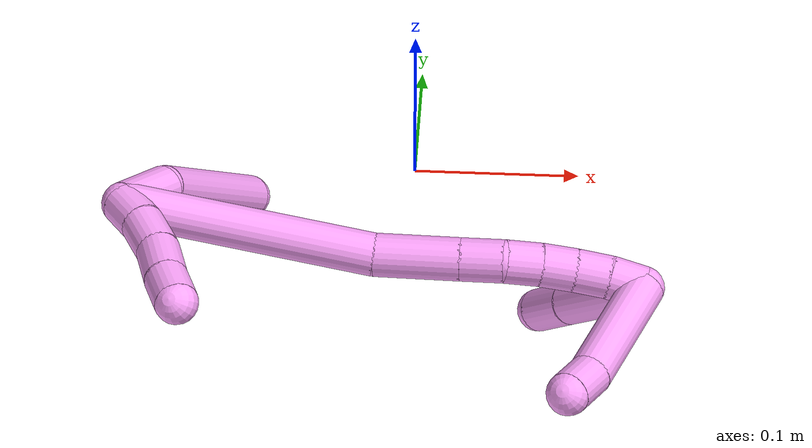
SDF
<sdf version="1.7">
 <world name="default">
  <model name="4">
   <static>0</static>
   <link name="4">
    <collision name="collision-cylinder-e_1_2_8">
     <pose>0.007513 0.005716 -0.017324 -2.82287 0.390689 -1.77722</pose>
     <geometry><cylinder><radius>0.0125</radius><length>0.039458</length></cylinder></geometry>
     <surface>
      <friction><ode><mu>1.16</mu><mu2>1.16</mu2><slip1>0</slip1><slip2>0</slip2></ode></friction>
      <contact><ode><kp>1e+06</kp><kd>1</kd><max_vel>0</max_vel><min_depth>0.001</min_depth></ode></contact>
     </surface>
    </collision>
    <visual name="visual-cylinder-e_1_2_8">
     <pose>0.007513 0.005716 -0.017324 -2.82287 0.390689 -1.77722</pose>
     <geometry><cylinder><radius>0.0125</radius><length>0.039458</length></cylinder></geometry>
     <material><ambient>1 0.65098 0.996078 1</ambient></material>
    </visual>
    <collision name="collision-cylinder-e_2_8_6">
     <pose>0.0232 0.015312 -0.089173 -3.07057 0.14843 -2.25012</pose>
     <geometry><cylinder><radius>0.0125</radius><length>0.110542</length></cylinder></geometry>
     <surface>
      <friction><ode><mu>1.16</mu><mu2>1.16</mu2><slip1>0</slip1><slip2>0</slip2></ode></friction>
      <contact><ode><kp>1e+06</kp><kd>1</kd><max_vel>0</max_vel><min_depth>0.001</min_depth></ode></contact>
     </surface>
    </collision>
    <visual name="visual-cylinder-e_2_8_6">
     <pose>0.0232 0.015312 -0.089173 -3.07057 0.14843 -2.25012</pose>
     <geometry><cylinder><radius>0.0125</radius><length>0.110542</length></cylinder></geometry>
     <material><ambient>1 0.65098 0.996078 1</ambient></material>
    </visual>
    <collision name="collision-cylinder-e_1_2_9">
     <pose>0.005871 -0.008615 0.005178 1.02959 0.52862 0.30383</pose>
     <geometry><cylinder><radius>0.0125</radius><length>0.023281</length></cylinder></geometry>
     <surface>
      <friction><ode><mu>1.16</mu><mu2>1.16</mu2><slip1>0</slip1><slip2>0</slip2></ode></friction>
      <contact><ode><kp>1e+06</kp><kd>1</kd><max_vel>0</max_vel><min_depth>0.001</min_depth></ode></contact>
     </surface>
    </collision>
    <visual name="visual-cylinder-e_1_2_9">
     <pose>0.005871 -0.008615 0.005178 1.02959 0.52862 0.30383</pose>
     <geometry><cylinder><radius>0.0125</radius><length>0.023281</length></cylinder></geometry>
     <material><ambient>1 0.65098 0.996078 1</ambient></material>
    </visual>
    <collision name="collision-cylinder-e_2_9_10">
     <pose>0.016521 -0.027587 0.016791 1.01487 0.373613 0.209409</pose>
     <geometry><cylinder><radius>0.0125</radius><length>0.026191</length></cylinder></geometry>
     <surface>
      <friction><ode><mu>1.16</mu><mu2>1.16</mu2><slip1>0</slip1><slip2>0</slip2></ode></friction>
      <contact><ode><kp>1e+06</kp><kd>1</kd><max_vel>0</max_vel><min_depth>0.001</min_depth></ode></contact>
     </surface>
    </collision>
    <visual name="visual-cylinder-e_2_9_10">
     <pose>0.016521 -0.027587 0.016791 1.01487 0.373613 0.209409</pose>
     <geometry><cylinder><radius>0.0125</radius><length>0.026191</length></cylinder></geometry>
     <material><ambient>1 0.65098 0.996078 1</ambient></material>
    </visual>
    <collision name="collision-cylinder-e_3_10_11">
     <pose>0.024389 -0.048251 0.031486 0.895225 0.229613 0.110614</pose>
     <geometry><cylinder><radius>0.0125</radius><length>0.027132</length></cylinder></geometry>
     <surface>
      <friction><ode><mu>1.16</mu><mu2>1.16</mu2><slip1>0</slip1><slip2>0</slip2></ode></friction>
      <contact><ode><kp>1e+06</kp><kd>1</kd><max_vel>0</max_vel><min_depth>0.001</min_depth></ode></contact>
     </surface>
    </collision>
    <visual name="visual-cylinder-e_3_10_11">
     <pose>0.024389 -0.048251 0.031486 0.895225 0.229613 0.110614</pose>
     <geometry><cylinder><radius>0.0125</radius><length>0.027132</length></cylinder></geometry>
     <material><ambient>1 0.65098 0.996078 1</ambient></material>
    </visual>
    <collision name="collision-cylinder-e_4_11_5">
     <pose>0.030937 -0.067492 0.046461 0.926196 0.300371 0.15083</pose>
     <geometry><cylinder><radius>0.0125</radius><length>0.023395</length></cylinder></geometry>
     <surface>
      <friction><ode><mu>1.16</mu><mu2>1.16</mu2><slip1>0</slip1><slip2>0</slip2></ode></friction>
      <contact><ode><kp>1e+06</kp><kd>1</kd><max_vel>0</max_vel><min_depth>0.001</min_depth></ode></contact>
     </surface>
    </collision>
    <visual name="visual-cylinder-e_4_11_5">
     <pose>0.030937 -0.067492 0.046461 0.926196 0.300371 0.15083</pose>
     <geometry><cylinder><radius>0.0125</radius><length>0.023395</length></cylinder></geometry>
     <material><ambient>1 0.65098 0.996078 1</ambient></material>
    </visual>
    <collision name="collision-cylinder-e_1_2_12">
     <pose>0.061952 -0.030002 -0.023056 2.22601 1.0225 1.70026</pose>
     <geometry><cylinder><radius>0.0125</radius><length>0.145187</length></cylinder></geometry>
     <surface>
      <friction><ode><mu>1.16</mu><mu2>1.16</mu2><slip1>0</slip1><slip2>0</slip2></ode></friction>
      <contact><ode><kp>1e+06</kp><kd>1</kd><max_vel>0</max_vel><min_depth>0.001</min_depth></ode></contact>
     </surface>
    </collision>
    <visual name="visual-cylinder-e_1_2_12">
     <pose>0.061952 -0.030002 -0.023056 2.22601 1.0225 1.70026</pose>
     <geometry><cylinder><radius>0.0125</radius><length>0.145187</length></cylinder></geometry>
     <material><ambient>1 0.65098 0.996078 1</ambient></material>
    </visual>
    <collision name="collision-cylinder-e_2_12_13">
     <pose>0.146801 -0.067352 -0.051296 2.1853 1.19655 1.84142</pose>
     <geometry><cylinder><radius>0.0125</radius><length>0.049197</length></cylinder></geometry>
     <surface>
      <friction><ode><mu>1.16</mu><mu2>1.16</mu2><slip1>0</slip1><slip2>0</slip2></ode></friction>
      <contact><ode><kp>1e+06</kp><kd>1</kd><max_vel>0</max_vel><min_depth>0.001</min_depth></ode></contact>
     </surface>
    </collision>
    <visual name="visual-cylinder-e_2_12_13">
     <pose>0.146801 -0.067352 -0.051296 2.1853 1.19655 1.84142</pose>
     <geometry><cylinder><radius>0.0125</radius><length>0.049197</length></cylinder></geometry>
     <material><ambient>1 0.65098 0.996078 1</ambient></material>
    </visual>
    <collision name="collision-cylinder-e_3_13_14">
     <pose>0.181266 -0.078332 -0.059016 2.18021 1.20516 1.84432</pose>
     <geometry><cylinder><radius>0.0125</radius><length>0.024778</length></cylinder></geometry>
     <surface>
      <friction><ode><mu>1.16</mu><mu2>1.16</mu2><slip1>0</slip1><slip2>0</slip2></ode></friction>
      <contact><ode><kp>1e+06</kp><kd>1</kd><max_vel>0</max_vel><min_depth>0.001</min_depth></ode></contact>
     </surface>
    </collision>
    <visual name="visual-cylinder-e_3_13_14">
     <pose>0.181266 -0.078332 -0.059016 2.18021 1.20516 1.84432</pose>
     <geometry><cylinder><radius>0.0125</radius><length>0.024778</length></cylinder></geometry>
     <material><ambient>1 0.65098 0.996078 1</ambient></material>
    </visual>
    <collision name="collision-cylinder-e_4_14_15">
     <pose>0.201593 -0.084829 -0.066245 2.5934 1.01006 2.20061</pose>
     <geometry><cylinder><radius>0.0125</radius><length>0.020681</length></cylinder></geometry>
     <surface>
      <friction><ode><mu>1.16</mu><mu2>1.16</mu2><slip1>0</slip1><slip2>0</slip2></ode></friction>
      <contact><ode><kp>1e+06</kp><kd>1</kd><max_vel>0</max_vel><min_depth>0.001</min_depth></ode></contact>
     </surface>
    </collision>
    <visual name="visual-cylinder-e_4_14_15">
     <pose>0.201593 -0.084829 -0.066245 2.5934 1.01006 2.20061</pose>
     <geometry><cylinder><radius>0.0125</radius><length>0.020681</length></cylinder></geometry>
     <material><ambient>1 0.65098 0.996078 1</ambient></material>
    </visual>
    <collision name="collision-cylinder-e_5_15_16">
     <pose>0.218694 -0.091141 -0.075324 2.47567 0.981618 1.9929</pose>
     <geometry><cylinder><radius>0.0125</radius><length>0.020073</length></cylinder></geometry>
     <surface>
      <friction><ode><mu>1.16</mu><mu2>1.16</mu2><slip1>0</slip1><slip2>0</slip2></ode></friction>
      <contact><ode><kp>1e+06</kp><kd>1</kd><max_vel>0</max_vel><min_depth>0.001</min_depth></ode></contact>
     </surface>
    </collision>
    <visual name="visual-cylinder-e_5_15_16">
     <pose>0.218694 -0.091141 -0.075324 2.47567 0.981618 1.9929</pose>
     <geometry><cylinder><radius>0.0125</radius><length>0.020073</length></cylinder></geometry>
     <material><ambient>1 0.65098 0.996078 1</ambient></material>
    </visual>
    <collision name="collision-cylinder-e_6_16_17">
     <pose>0.235503 -0.098616 -0.083265 2.29384 1.0051 1.76678</pose>
     <geometry><cylinder><radius>0.0125</radius><length>0.020053</length></cylinder></geometry>
     <surface>
      <friction><ode><mu>1.16</mu><mu2>1.16</mu2><slip1>0</slip1><slip2>0</slip2></ode></friction>
      <contact><ode><kp>1e+06</kp><kd>1</kd><max_vel>0</max_vel><min_depth>0.001</min_depth></ode></contact>
     </surface>
    </collision>
    <visual name="visual-cylinder-e_6_16_17">
     <pose>0.235503 -0.098616 -0.083265 2.29384 1.0051 1.76678</pose>
     <geometry><cylinder><radius>0.0125</radius><length>0.020053</length></cylinder></geometry>
     <material><ambient>1 0.65098 0.996078 1</ambient></material>
    </visual>
    <collision name="collision-cylinder-e_7_17_1">
     <pose>0.251905 -0.107614 -0.090375 2.19166 0.91488 1.52716</pose>
     <geometry><cylinder><radius>0.0125</radius><length>0.020032</length></cylinder></geometry>
     <surface>
      <friction><ode><mu>1.16</mu><mu2>1.16</mu2><slip1>0</slip1><slip2>0</slip2></ode></friction>
      <contact><ode><kp>1e+06</kp><kd>1</kd><max_vel>0</max_vel><min_depth>0.001</min_depth></ode></contact>
     </surface>
    </collision>
    <visual name="visual-cylinder-e_7_17_1">
     <pose>0.251905 -0.107614 -0.090375 2.19166 0.91488 1.52716</pose>
     <geometry><cylinder><radius>0.0125</radius><length>0.020032</length></cylinder></geometry>
     <material><ambient>1 0.65098 0.996078 1</ambient></material>
    </visual>
    <collision name="collision-cylinder-e_1_1_18">
     <pose>0.244038 -0.136804 -0.069992 0.791316 -0.434531 -0.183887</pose>
     <geometry><cylinder><radius>0.0125</radius><length>0.075086</length></cylinder></geometry>
     <surface>
      <friction><ode><mu>1.16</mu><mu2>1.16</mu2><slip1>0</slip1><slip2>0</slip2></ode></friction>
      <contact><ode><kp>1e+06</kp><kd>1</kd><max_vel>0</max_vel><min_depth>0.001</min_depth></ode></contact>
     </surface>
    </collision>
    <visual name="visual-cylinder-e_1_1_18">
     <pose>0.244038 -0.136804 -0.069992 0.791316 -0.434531 -0.183887</pose>
     <geometry><cylinder><radius>0.0125</radius><length>0.075086</length></cylinder></geometry>
     <material><ambient>1 0.65098 0.996078 1</ambient></material>
    </visual>
    <collision name="collision-cylinder-e_2_18_4">
     <pose>0.223324 -0.166382 -0.035936 0.486815 -0.405009 -0.101886</pose>
     <geometry><cylinder><radius>0.0125</radius><length>0.024914</length></cylinder></geometry>
     <surface>
      <friction><ode><mu>1.16</mu><mu2>1.16</mu2><slip1>0</slip1><slip2>0</slip2></ode></friction>
      <contact><ode><kp>1e+06</kp><kd>1</kd><max_vel>0</max_vel><min_depth>0.001</min_depth></ode></contact>
     </surface>
    </collision>
    <visual name="visual-cylinder-e_2_18_4">
     <pose>0.223324 -0.166382 -0.035936 0.486815 -0.405009 -0.101886</pose>
     <geometry><cylinder><radius>0.0125</radius><length>0.024914</length></cylinder></geometry>
     <material><ambient>1 0.65098 0.996078 1</ambient></material>
    </visual>
    <collision name="collision-cylinder-e_1_1_19">
     <pose>0.233571 -0.106577 -0.114544 -2.85814 -0.885587 2.55705</pose>
     <geometry><cylinder><radius>0.0125</radius><length>0.067861</length></cylinder></geometry>
     <surface>
      <friction><ode><mu>1.16</mu><mu2>1.16</mu2><slip1>0</slip1><slip2>0</slip2></ode></friction>
      <contact><ode><kp>1e+06</kp><kd>1</kd><max_vel>0</max_vel><min_depth>0.001</min_depth></ode></contact>
     </surface>
    </collision>
    <visual name="visual-cylinder-e_1_1_19">
     <pose>0.233571 -0.106577 -0.114544 -2.85814 -0.885587 2.55705</pose>
     <geometry><cylinder><radius>0.0125</radius><length>0.067861</length></cylinder></geometry>
     <material><ambient>1 0.65098 0.996078 1</ambient></material>
    </visual>
    <collision name="collision-cylinder-e_2_19_3">
     <pose>0.195487 -0.097749 -0.145682 -2.87946 -0.825787 2.557</pose>
     <geometry><cylinder><radius>0.0125</radius><length>0.032139</length></cylinder></geometry>
     <surface>
      <friction><ode><mu>1.16</mu><mu2>1.16</mu2><slip1>0</slip1><slip2>0</slip2></ode></friction>
      <contact><ode><kp>1e+06</kp><kd>1</kd><max_vel>0</max_vel><min_depth>0.001</min_depth></ode></contact>
     </surface>
    </collision>
    <visual name="visual-cylinder-e_2_19_3">
     <pose>0.195487 -0.097749 -0.145682 -2.87946 -0.825787 2.557</pose>
     <geometry><cylinder><radius>0.0125</radius><length>0.032139</length></cylinder></geometry>
     <material><ambient>1 0.65098 0.996078 1</ambient></material>
    </visual>
    <collision name="collision-sphere-3">
     <pose>0.183674 -0.094926 -0.156205 0 -0 0</pose>
     <geometry><sphere><radius>0.0125</radius></sphere></geometry>
     <surface>
      <friction><ode><mu>1.16</mu><mu2>1.16</mu2><slip1>0</slip1><slip2>0</slip2></ode></friction>
      <contact><ode><kp>1e+06</kp><kd>1</kd><max_vel>0</max_vel><min_depth>0.001</min_depth></ode></contact>
     </surface>
    </collision>
    <visual name="visual-sphere-3">
     <pose>0.183674 -0.094926 -0.156205 0 -0 0</pose>
     <geometry><sphere><radius>0.0125</radius></sphere></geometry>
     <material><ambient>1 0.65098 0.996078 1</ambient></material>
    </visual>
    <collision name="collision-sphere-19">
     <pose>0.207299 -0.100572 -0.13516 0 -0 0</pose>
     <geometry><sphere><radius>0.0125</radius></sphere></geometry>
     <surface>
      <friction><ode><mu>1.16</mu><mu2>1.16</mu2><slip1>0</slip1><slip2>0</slip2></ode></friction>
      <contact><ode><kp>1e+06</kp><kd>1</kd><max_vel>0</max_vel><min_depth>0.001</min_depth></ode></contact>
     </surface>
    </collision>
    <visual name="visual-sphere-19">
     <pose>0.207299 -0.100572 -0.13516 0 -0 0</pose>
     <geometry><sphere><radius>0.0125</radius></sphere></geometry>
     <material><ambient>1 0.65098 0.996078 1</ambient></material>
    </visual>
    <collision name="collision-sphere-11">
     <pose>0.027476 -0.05856 0.039747 0 -0 0</pose>
     <geometry><sphere><radius>0.0125</radius></sphere></geometry>
     <surface>
      <friction><ode><mu>1.16</mu><mu2>1.16</mu2><slip1>0</slip1><slip2>0</slip2></ode></friction>
      <contact><ode><kp>1e+06</kp><kd>1</kd><max_vel>0</max_vel><min_depth>0.001</min_depth></ode></contact>
     </surface>
    </collision>
    <visual name="visual-sphere-11">
     <pose>0.027476 -0.05856 0.039747 0 -0 0</pose>
     <geometry><sphere><radius>0.0125</radius></sphere></geometry>
     <material><ambient>1 0.65098 0.996078 1</ambient></material>
    </visual>
    <collision name="collision-sphere-10">
     <pose>0.021301 -0.037943 0.023225 0 -0 0</pose>
     <geometry><sphere><radius>0.0125</radius></sphere></geometry>
     <surface>
      <friction><ode><mu>1.16</mu><mu2>1.16</mu2><slip1>0</slip1><slip2>0</slip2></ode></friction>
      <contact><ode><kp>1e+06</kp><kd>1</kd><max_vel>0</max_vel><min_depth>0.001</min_depth></ode></contact>
     </surface>
    </collision>
    <visual name="visual-sphere-10">
     <pose>0.021301 -0.037943 0.023225 0 -0 0</pose>
     <geometry><sphere><radius>0.0125</radius></sphere></geometry>
     <material><ambient>1 0.65098 0.996078 1</ambient></material>
    </visual>
    <collision name="collision-sphere-6">
     <pose>0.031374 0.019191 -0.143698 0 -0 0</pose>
     <geometry><sphere><radius>0.0125</radius></sphere></geometry>
     <surface>
      <friction><ode><mu>1.16</mu><mu2>1.16</mu2><slip1>0</slip1><slip2>0</slip2></ode></friction>
      <contact><ode><kp>1e+06</kp><kd>1</kd><max_vel>0</max_vel><min_depth>0.001</min_depth></ode></contact>
     </surface>
    </collision>
    <visual name="visual-sphere-6">
     <pose>0.031374 0.019191 -0.143698 0 -0 0</pose>
     <geometry><sphere><radius>0.0125</radius></sphere></geometry>
     <material><ambient>1 0.65098 0.996078 1</ambient></material>
    </visual>
    <collision name="collision-sphere-9">
     <pose>0.011742 -0.017231 0.010357 0 -0 0</pose>
     <geometry><sphere><radius>0.0125</radius></sphere></geometry>
     <surface>
      <friction><ode><mu>1.16</mu><mu2>1.16</mu2><slip1>0</slip1><slip2>0</slip2></ode></friction>
      <contact><ode><kp>1e+06</kp><kd>1</kd><max_vel>0</max_vel><min_depth>0.001</min_depth></ode></contact>
     </surface>
    </collision>
    <visual name="visual-sphere-9">
     <pose>0.011742 -0.017231 0.010357 0 -0 0</pose>
     <geometry><sphere><radius>0.0125</radius></sphere></geometry>
     <material><ambient>1 0.65098 0.996078 1</ambient></material>
    </visual>
    <collision name="collision-sphere-2">
     <geometry><sphere><radius>0.0125</radius></sphere></geometry>
     <surface>
      <friction><ode><mu>1.16</mu><mu2>1.16</mu2><slip1>0</slip1><slip2>0</slip2></ode></friction>
      <contact><ode><kp>1e+06</kp><kd>1</kd><max_vel>0</max_vel><min_depth>0.001</min_depth></ode></contact>
     </surface>
    </collision>
    <visual name="visual-sphere-2">
     <geometry><sphere><radius>0.0125</radius></sphere></geometry>
     <material><ambient>1 0.65098 0.996078 1</ambient></material>
    </visual>
    <collision name="collision-sphere-8">
     <pose>0.015027 0.011433 -0.034647 0 -0 0</pose>
     <geometry><sphere><radius>0.0125</radius></sphere></geometry>
     <surface>
      <friction><ode><mu>1.16</mu><mu2>1.16</mu2><slip1>0</slip1><slip2>0</slip2></ode></friction>
      <contact><ode><kp>1e+06</kp><kd>1</kd><max_vel>0</max_vel><min_depth>0.001</min_depth></ode></contact>
     </surface>
    </collision>
    <visual name="visual-sphere-8">
     <pose>0.015027 0.011433 -0.034647 0 -0 0</pose>
     <geometry><sphere><radius>0.0125</radius></sphere></geometry>
     <material><ambient>1 0.65098 0.996078 1</ambient></material>
    </visual>
    <collision name="collision-sphere-5">
     <pose>0.034398 -0.076423 0.053175 0 -0 0</pose>
     <geometry><sphere><radius>0.0125</radius></sphere></geometry>
     <surface>
      <friction><ode><mu>1.16</mu><mu2>1.16</mu2><slip1>0</slip1><slip2>0</slip2></ode></friction>
      <contact><ode><kp>1e+06</kp><kd>1</kd><max_vel>0</max_vel><min_depth>0.001</min_depth></ode></contact>
     </surface>
    </collision>
    <visual name="visual-sphere-5">
     <pose>0.034398 -0.076423 0.053175 0 -0 0</pose>
     <geometry><sphere><radius>0.0125</radius></sphere></geometry>
     <material><ambient>1 0.65098 0.996078 1</ambient></material>
    </visual>
    <collision name="collision-sphere-12">
     <pose>0.123905 -0.060005 -0.046112 0 -0 0</pose>
     <geometry><sphere><radius>0.0125</radius></sphere></geometry>
     <surface>
      <friction><ode><mu>1.16</mu><mu2>1.16</mu2><slip1>0</slip1><slip2>0</slip2></ode></friction>
      <contact><ode><kp>1e+06</kp><kd>1</kd><max_vel>0</max_vel><min_depth>0.001</min_depth></ode></contact>
     </surface>
    </collision>
    <visual name="visual-sphere-12">
     <pose>0.123905 -0.060005 -0.046112 0 -0 0</pose>
     <geometry><sphere><radius>0.0125</radius></sphere></geometry>
     <material><ambient>1 0.65098 0.996078 1</ambient></material>
    </visual>
    <collision name="collision-sphere-13">
     <pose>0.169696 -0.074699 -0.056481 0 -0 0</pose>
     <geometry><sphere><radius>0.0125</radius></sphere></geometry>
     <surface>
      <friction><ode><mu>1.16</mu><mu2>1.16</mu2><slip1>0</slip1><slip2>0</slip2></ode></friction>
      <contact><ode><kp>1e+06</kp><kd>1</kd><max_vel>0</max_vel><min_depth>0.001</min_depth></ode></contact>
     </surface>
    </collision>
    <visual name="visual-sphere-13">
     <pose>0.169696 -0.074699 -0.056481 0 -0 0</pose>
     <geometry><sphere><radius>0.0125</radius></sphere></geometry>
     <material><ambient>1 0.65098 0.996078 1</ambient></material>
    </visual>
    <collision name="collision-sphere-14">
     <pose>0.192836 -0.081964 -0.061552 0 -0 0</pose>
     <geometry><sphere><radius>0.0125</radius></sphere></geometry>
     <surface>
      <friction><ode><mu>1.16</mu><mu2>1.16</mu2><slip1>0</slip1><slip2>0</slip2></ode></friction>
      <contact><ode><kp>1e+06</kp><kd>1</kd><max_vel>0</max_vel><min_depth>0.001</min_depth></ode></contact>
     </surface>
    </collision>
    <visual name="visual-sphere-14">
     <pose>0.192836 -0.081964 -0.061552 0 -0 0</pose>
     <geometry><sphere><radius>0.0125</radius></sphere></geometry>
     <material><ambient>1 0.65098 0.996078 1</ambient></material>
    </visual>
    <collision name="collision-sphere-15">
     <pose>0.21035 -0.087695 -0.070938 0 -0 0</pose>
     <geometry><sphere><radius>0.0125</radius></sphere></geometry>
     <surface>
      <friction><ode><mu>1.16</mu><mu2>1.16</mu2><slip1>0</slip1><slip2>0</slip2></ode></friction>
      <contact><ode><kp>1e+06</kp><kd>1</kd><max_vel>0</max_vel><min_depth>0.001</min_depth></ode></contact>
     </surface>
    </collision>
    <visual name="visual-sphere-15">
     <pose>0.21035 -0.087695 -0.070938 0 -0 0</pose>
     <geometry><sphere><radius>0.0125</radius></sphere></geometry>
     <material><ambient>1 0.65098 0.996078 1</ambient></material>
    </visual>
    <collision name="collision-sphere-16">
     <pose>0.227038 -0.094586 -0.079709 0 -0 0</pose>
     <geometry><sphere><radius>0.0125</radius></sphere></geometry>
     <surface>
      <friction><ode><mu>1.16</mu><mu2>1.16</mu2><slip1>0</slip1><slip2>0</slip2></ode></friction>
      <contact><ode><kp>1e+06</kp><kd>1</kd><max_vel>0</max_vel><min_depth>0.001</min_depth></ode></contact>
     </surface>
    </collision>
    <visual name="visual-sphere-16">
     <pose>0.227038 -0.094586 -0.079709 0 -0 0</pose>
     <geometry><sphere><radius>0.0125</radius></sphere></geometry>
     <material><ambient>1 0.65098 0.996078 1</ambient></material>
    </visual>
    <collision name="collision-sphere-17">
     <pose>0.243968 -0.102645 -0.086821 0 -0 0</pose>
     <geometry><sphere><radius>0.0125</radius></sphere></geometry>
     <surface>
      <friction><ode><mu>1.16</mu><mu2>1.16</mu2><slip1>0</slip1><slip2>0</slip2></ode></friction>
      <contact><ode><kp>1e+06</kp><kd>1</kd><max_vel>0</max_vel><min_depth>0.001</min_depth></ode></contact>
     </surface>
    </collision>
    <visual name="visual-sphere-17">
     <pose>0.243968 -0.102645 -0.086821 0 -0 0</pose>
     <geometry><sphere><radius>0.0125</radius></sphere></geometry>
     <material><ambient>1 0.65098 0.996078 1</ambient></material>
    </visual>
    <collision name="collision-sphere-1">
     <pose>0.259843 -0.112582 -0.093929 0 -0 0</pose>
     <geometry><sphere><radius>0.0125</radius></sphere></geometry>
     <surface>
      <friction><ode><mu>1.16</mu><mu2>1.16</mu2><slip1>0</slip1><slip2>0</slip2></ode></friction>
      <contact><ode><kp>1e+06</kp><kd>1</kd><max_vel>0</max_vel><min_depth>0.001</min_depth></ode></contact>
     </surface>
    </collision>
    <visual name="visual-sphere-1">
     <pose>0.259843 -0.112582 -0.093929 0 -0 0</pose>
     <geometry><sphere><radius>0.0125</radius></sphere></geometry>
     <material><ambient>1 0.65098 0.996078 1</ambient></material>
    </visual>
    <collision name="collision-sphere-18">
     <pose>0.228233 -0.161026 -0.046055 0 -0 0</pose>
     <geometry><sphere><radius>0.0125</radius></sphere></geometry>
     <surface>
      <friction><ode><mu>1.16</mu><mu2>1.16</mu2><slip1>0</slip1><slip2>0</slip2></ode></friction>
      <contact><ode><kp>1e+06</kp><kd>1</kd><max_vel>0</max_vel><min_depth>0.001</min_depth></ode></contact>
     </surface>
    </collision>
    <visual name="visual-sphere-18">
     <pose>0.228233 -0.161026 -0.046055 0 -0 0</pose>
     <geometry><sphere><radius>0.0125</radius></sphere></geometry>
     <material><ambient>1 0.65098 0.996078 1</ambient></material>
    </visual>
    <collision name="collision-sphere-4">
     <pose>0.218416 -0.171738 -0.025816 0 -0 0</pose>
     <geometry><sphere><radius>0.0125</radius></sphere></geometry>
     <surface>
      <friction><ode><mu>1.16</mu><mu2>1.16</mu2><slip1>0</slip1><slip2>0</slip2></ode></friction>
      <contact><ode><kp>1e+06</kp><kd>1</kd><max_vel>0</max_vel><min_depth>0.001</min_depth></ode></contact>
     </surface>
    </collision>
    <visual name="visual-sphere-4">
     <pose>0.218416 -0.171738 -0.025816 0 -0 0</pose>
     <geometry><sphere><radius>0.0125</radius></sphere></geometry>
     <material><ambient>1 0.65098 0.996078 1</ambient></material>
    </visual>
    <inertial>
     <pose>0.11983 -0.058682 -0.053787 0 -0 0</pose>
     <mass>0.75</mass>
     <inertia><ixx>3e-06</ixx><ixy>0</ixy><ixz>0</ixz><iyy>0.000392</iyy><iyz>0</iyz><izz>-0.000104</izz></inertia>
    </inertial>
   </link>
   <pose>-0.157044 -0.182854 0.110745 0.70906 -0.382848 0.035371</pose>
  </model>
 </world>
</sdf>
